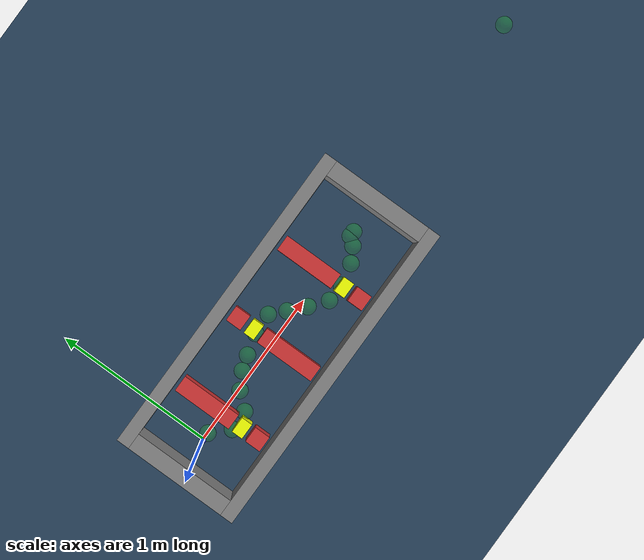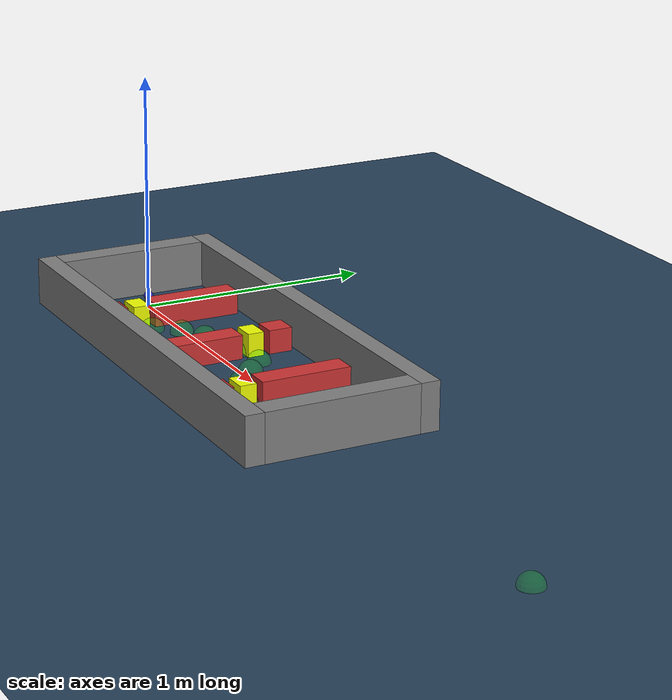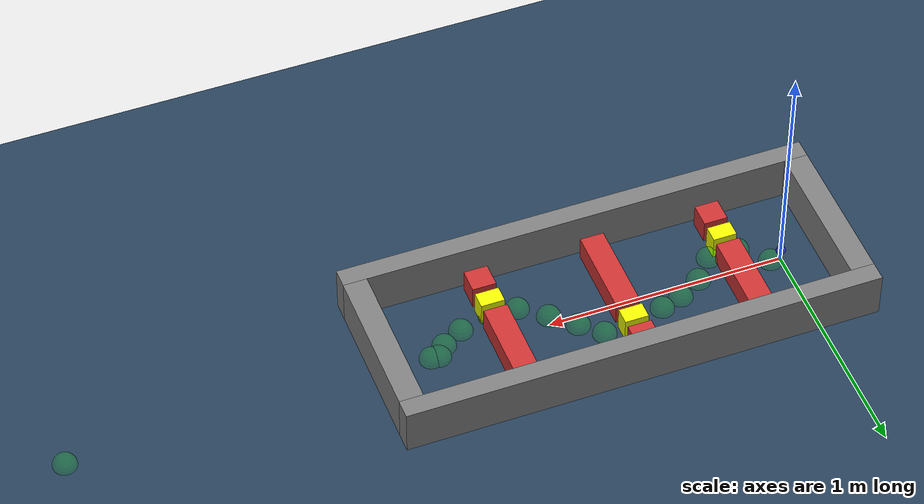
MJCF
<mujoco>
  <option timestep="0.01" integrator="RK4" />
  <worldbody>
    <light pos="0 0 1.5" dir="0 0 -1" directional="true" />
    <geom name="floor" size="0 0 0.05" type="plane" material="groundplane" friction=".5 0.005 0.001"
      priority="2" condim="4" />
  </worldbody>

  <worldbody>

    <body name="ball" pos=".0 0 .05">
      <geom name="gball_0" type="sphere" size="0.02" mass="5." material="BallMat"
        friction=".5 0.005 0.001 " condim="4" />
      <site name="sensor_ball" />
      <joint name="joint_x" type="slide" pos="0 0 0" axis="1 0 0" />
      <joint name="joint_y" type="slide" pos="0 0 0" axis="0 1 0" />
    </body>

    <body name="wall_1" pos="0.2 0.11 .05">
      <geom name="wall_1" type="box" size="0.05 0.19 0.05" mass=".1" material="static" condim="4" />
    </body>

    <body name="wall_2" pos="0.2 -0.25 .05">
      <geom name="wall_2" type="box" size="0.05 0.05 0.05" mass=".1" material="static" condim="4" />
    </body>

    <body name="movable_cube1" pos="0.2 -0.14 .05" euler="0 0 0">
      <freejoint />
      <geom name="movable_cube1" type="box" size="0.05 0.035 0.05" mass=".1" material="movable"
        condim="4" />
    </body>

    <body name="wall_3" pos="0.7 0.25 .05">
      <geom name="wall_3" type="box" size="0.05 0.05 0.05" mass=".1" material="static" condim="4" />
    </body>

    <body name="wall_4" pos="0.7 -0.11 .05">
      <geom name="wall_4" type="box" size="0.05 0.19 0.05" mass=".1" material="static" condim="4" />
    </body>

    <body name="movable_cube2" pos="0.7 0.14 .05" euler="0 0 0">
      <freejoint />
      <geom name="movable_cube2" type="box" size="0.05 0.035 0.05" mass=".1" material="movable"
        condim="4" />
    </body>

    <body name="wall_5" pos="1.2 0.11 .05">
      <geom name="wall_5" type="box" size="0.05 0.19 0.05" mass=".1" material="static" condim="4" />
    </body>

    <body name="wall_6" pos="1.2 -0.25 .05">
      <geom name="wall_6" type="box" size="0.05 0.05 0.05" mass=".1" material="static" condim="4" />
    </body>

    <body name="movable_cube3" pos="1.2 -0.14 .05" euler="0 0 0">
      <freejoint />
      <geom name="movable_cube3" type="box" size="0.05 0.035 0.05" mass=".1" material="movable"
        condim="4" />
    </body>

    <body name="case" pos="0 0 0.1">
      <geom name="gcase_a" type="box" size="0.05 0.32 0.1" pos="-.2 0 0" />
      <geom name="gcase_b" type="box" size="0.05 0.32 0.1" pos="1.7 0 0" />
      <geom name="gcase_c" type="box" size="1.0 0.04 0.1" pos="0.75 .36 0" />
      <geom name="gcase_d" type="box" size="1.0 0.04 0.1" pos="0.75 -.36 0" />
    </body>

    <site name="target1" pos="0.0413894 -0.0020379 0.0" size="0.05" rgba="0 1 0 0.1" />
    <site name="target2" pos="0.14405 -0.105094 0.0" size="0.05" rgba="0 1 0 0.1" />
    <site name="target3" pos="0.270911 -0.102321 0.0" size="0.05" rgba="0 1 0 0.1" />
    <site name="target4" pos="0.354805 -0.00758797 0.0" size="0.05" rgba="0 1 0 0.1" />
    <site name="target5" pos="0.455876 0.0496415 0.0" size="0.05" rgba="0 1 0 0.1" />
    <site name="target6" pos="0.548614 0.0792173 0.0" size="0.05" rgba="0 1 0 0.1" />
    <site name="target7" pos="0.680124 0.115044 0.0" size="0.05" rgba="0 1 0 0.1" />
    <site name="target8" pos="0.813185 0.120652 0.0" size="0.05" rgba="0 1 0 0.1" />
    <site name="target9" pos="0.894388 0.043533 0.0" size="0.05" rgba="0 1 0 0.1" />
    <site name="target10" pos="0.987315 -0.041265 0.0" size="0.05" rgba="0 1 0 0.1" />
    <site name="target11" pos="1.09039 -0.121986 0.0" size="0.05" rgba="0 1 0 0.1" />
    <site name="target12" pos="1.20324 -0.126525 0.0" size="0.05" rgba="0 1 0 0.1" />
    <site name="target13" pos="1.34033 -0.0959827 0.0" size="0.05" rgba="0 1 0 0.1" />
    <site name="target14" pos="1.42954 -0.0453339 0.0" size="0.05" rgba="0 1 0 0.1" />
    <site name="target15" pos="1.46854 0.00200714 0.0" size="0.05" rgba="0 1 0 0.1" />
    <site name="target16" pos="3.0 0.0 0.0" size="0.05" rgba="0 1 0 0.1" />

    <site name="target" pos="1.5 0.0 0.0" size="0.05" rgba="0 1 0 0.2" />

  </worldbody>

  <actuator>
    <motor name="actuator_x" joint="joint_x" gear="1" />
    <motor name="actuator_y" joint="joint_y" gear="1" />
  </actuator>

  <asset>
    <!-- Materials for visualization -->
    <material name="MatPlane" rgba="0.8 0.9 0.8 1" />
    <material name="movable" rgba="0.94 1.0 0.0 1" />
    <material name="static" rgba="0.8 0.2 0.2 1" />
    <material name="BallMat" rgba="0.2 0.2 0.8 1" />

    <texture type="skybox" builtin="gradient" rgb1="0.3 0.5 0.7" rgb2="0 0 0" width="512"
      height="3072" />
    <texture type="2d" name="groundplane" builtin="checker" mark="edge" rgb1="0.2 0.3 0.4"
      rgb2="0.1 0.2 0.3"
      markrgb="0.8 0.8 0.8" width="300" height="300" />
    <material name="groundplane" texture="groundplane" texuniform="true" texrepeat="5 5"
      reflectance="0.2" />
  </asset>

  <visual>
    <headlight diffuse="0.6 0.6 0.6" ambient="0.3 0.3 0.3" specular="0 0 0" />
    <rgba haze="0.15 0.25 0.35 1" />
    <global azimuth="60" elevation="-20" />
  </visual>

  <sensor>
    <velocimeter name="sensor_ball" site="sensor_ball" />
  </sensor>

</mujoco>
